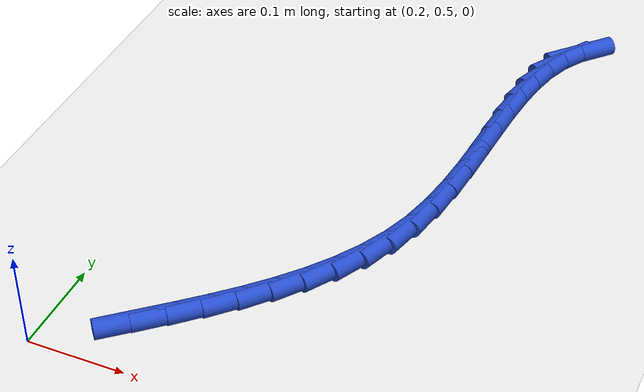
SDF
<sdf version="1.6">
 <world name="default">
  <model name="ground_plane">
   <static>1</static>
   <link name="link">
    <collision name="collision">
     <geometry><plane><normal>0 0 1</normal><size>100 100</size></plane></geometry>
     <surface><friction><ode><mu>100</mu><mu2>50</mu2></ode></friction></surface>
    </collision>
    <visual name="visual">
     <cast_shadows>0</cast_shadows>
     <geometry><plane><normal>0 0 1</normal><size>100 100</size></plane></geometry>
     <material>
      <script><uri>file://media/materials/scripts/gazebo.material</uri><name>Gazebo/WhiteGlow</name></script>
     </material>
    </visual>
   </link>
  </model>
  <model name="line">
   <link name="link_20">
    <pose>0.2823749927854412 0.5543572568521266 0.01 0 1.57 0.7065207644994871</pose>
    <collision name="collision">
     <geometry><cylinder><radius>0.01</radius><length>0.08</length></cylinder></geometry>
    </collision>
    <visual name="visual">
     <material>
      <script><name>Gazebo/Blue</name><uri>file://media/materials/scripts/gazebo.material</uri></script>
     </material>
     <geometry><cylinder><radius>0.01</radius><length>0.08</length></cylinder></geometry>
    </visual>
   </link>
   <link name="link_21">
    <pose>0.3079128461987999 0.5761537386448085 0.01 0 1.57 0.7224657098544726</pose>
    <collision name="collision">
     <geometry><cylinder><radius>0.01</radius><length>0.08</length></cylinder></geometry>
    </collision>
    <visual name="visual">
     <material>
      <script><name>Gazebo/Blue</name><uri>file://media/materials/scripts/gazebo.material</uri></script>
     </material>
     <geometry><cylinder><radius>0.01</radius><length>0.08</length></cylinder></geometry>
    </visual>
   </link>
   <link name="link_22">
    <pose>0.33290614052575945 0.5981838233949993 0.01 0 1.57 0.7512696150963581</pose>
    <collision name="collision">
     <geometry><cylinder><radius>0.01</radius><length>0.08</length></cylinder></geometry>
    </collision>
    <visual name="visual">
     <material>
      <script><name>Gazebo/Blue</name><uri>file://media/materials/scripts/gazebo.material</uri></script>
     </material>
     <geometry><cylinder><radius>0.01</radius><length>0.08</length></cylinder></geometry>
    </visual>
   </link>
   <link name="link_23">
    <pose>0.35700092325886096 0.6206876456446644 0.01 0 1.57 0.7935476910527351</pose>
    <collision name="collision">
     <geometry><cylinder><radius>0.01</radius><length>0.08</length></cylinder></geometry>
    </collision>
    <visual name="visual">
     <material>
      <script><name>Gazebo/Blue</name><uri>file://media/materials/scripts/gazebo.material</uri></script>
     </material>
     <geometry><cylinder><radius>0.01</radius><length>0.08</length></cylinder></geometry>
    </visual>
   </link>
   <link name="link_24">
    <pose>0.3798432418906455 0.6439053399357703 0.01 0 1.57 0.8499626452688942</pose>
    <collision name="collision">
     <geometry><cylinder><radius>0.01</radius><length>0.08</length></cylinder></geometry>
    </collision>
    <visual name="visual">
     <material>
      <script><name>Gazebo/Blue</name><uri>file://media/materials/scripts/gazebo.material</uri></script>
     </material>
     <geometry><cylinder><radius>0.01</radius><length>0.08</length></cylinder></geometry>
    </visual>
   </link>
   <link name="link_25">
    <pose>0.40107914391365423 0.6680770408102826 0.01 0 1.57 0.9209885288301519</pose>
    <collision name="collision">
     <geometry><cylinder><radius>0.01</radius><length>0.08</length></cylinder></geometry>
    </collision>
    <visual name="visual">
     <material>
      <script><name>Gazebo/Blue</name><uri>file://media/materials/scripts/gazebo.material</uri></script>
     </material>
     <geometry><cylinder><radius>0.01</radius><length>0.08</length></cylinder></geometry>
    </visual>
   </link>
   <link name="link_26">
    <pose>0.4203546768204281 0.6934428828101674 0.01 0 1.57 1.0065518093062245</pose>
    <collision name="collision">
     <geometry><cylinder><radius>0.01</radius><length>0.08</length></cylinder></geometry>
    </collision>
    <visual name="visual">
     <material>
      <script><name>Gazebo/Blue</name><uri>file://media/materials/scripts/gazebo.material</uri></script>
     </material>
     <geometry><cylinder><radius>0.01</radius><length>0.08</length></cylinder></geometry>
    </visual>
   </link>
   <link name="link_27">
    <pose>0.4373158881035083 0.7202430004773905 0.01 0 1.57 1.1055857865491392</pose>
    <collision name="collision">
     <geometry><cylinder><radius>0.01</radius><length>0.08</length></cylinder></geometry>
    </collision>
    <visual name="visual">
     <material>
      <script><name>Gazebo/Blue</name><uri>file://media/materials/scripts/gazebo.material</uri></script>
     </material>
     <geometry><cylinder><radius>0.01</radius><length>0.08</length></cylinder></geometry>
    </visual>
   </link>
   <link name="link_28">
    <pose>0.45160882525543605 0.7487175283539182 0.01 0 1.57 1.2156180117135698</pose>
    <collision name="collision">
     <geometry><cylinder><radius>0.01</radius><length>0.08</length></cylinder></geometry>
    </collision>
    <visual name="visual">
     <material>
      <script><name>Gazebo/Blue</name><uri>file://media/materials/scripts/gazebo.material</uri></script>
     </material>
     <geometry><cylinder><radius>0.01</radius><length>0.08</length></cylinder></geometry>
    </visual>
   </link>
   <link name="link_29">
    <pose>0.4628801880739714 0.7791060988051834 0.01 0 1.57 1.3236279337653039</pose>
    <collision name="collision">
     <geometry><cylinder><radius>0.01</radius><length>0.08</length></cylinder></geometry>
    </collision>
    <visual name="visual">
     <material>
      <script><name>Gazebo/Blue</name><uri>file://media/materials/scripts/gazebo.material</uri></script>
     </material>
     <geometry><cylinder><radius>0.01</radius><length>0.08</length></cylinder></geometry>
    </visual>
   </link>
   <link name="link_30">
    <pose>0.4710402944478253 0.8114453980678558 0.01 0 1.57 1.4059331654023732</pose>
    <collision name="collision">
     <geometry><cylinder><radius>0.01</radius><length>0.08</length></cylinder></geometry>
    </collision>
    <visual name="visual">
     <material>
      <script><name>Gazebo/Blue</name><uri>file://media/materials/scripts/gazebo.material</uri></script>
     </material>
     <geometry><cylinder><radius>0.01</radius><length>0.08</length></cylinder></geometry>
    </visual>
   </link>
   <link name="link_31">
    <pose>0.47666597273250555 0.8452589999494537 0.01 0 1.57 1.4626216940751016</pose>
    <collision name="collision">
     <geometry><cylinder><radius>0.01</radius><length>0.08</length></cylinder></geometry>
    </collision>
    <visual name="visual">
     <material>
      <script><name>Gazebo/Blue</name><uri>file://media/materials/scripts/gazebo.material</uri></script>
     </material>
     <geometry><cylinder><radius>0.01</radius><length>0.08</length></cylinder></geometry>
    </visual>
   </link>
   <link name="link_32">
    <pose>0.48043777723819026 0.8799906249330267 0.01 0 1.57 1.4968863020705354</pose>
    <collision name="collision">
     <geometry><cylinder><radius>0.01</radius><length>0.08</length></cylinder></geometry>
    </collision>
    <visual name="visual">
     <material>
      <script><name>Gazebo/Blue</name><uri>file://media/materials/scripts/gazebo.material</uri></script>
     </material>
     <geometry><cylinder><radius>0.01</radius><length>0.08</length></cylinder></geometry>
    </visual>
   </link>
   <link name="link_33">
    <pose>0.4830362622750574 0.9150839935016243 0.01 0 1.57 1.5105315589571833</pose>
    <collision name="collision">
     <geometry><cylinder><radius>0.01</radius><length>0.08</length></cylinder></geometry>
    </collision>
    <visual name="visual">
     <material>
      <script><name>Gazebo/Blue</name><uri>file://media/materials/scripts/gazebo.material</uri></script>
     </material>
     <geometry><cylinder><radius>0.01</radius><length>0.08</length></cylinder></geometry>
    </visual>
   </link>
   <link name="link_34">
    <pose>0.48514198215328497 0.9499828261382951 0.01 0 1.57 1.5037332914445531</pose>
    <collision name="collision">
     <geometry><cylinder><radius>0.01</radius><length>0.08</length></cylinder></geometry>
    </collision>
    <visual name="visual">
     <material>
      <script><name>Gazebo/Blue</name><uri>file://media/materials/scripts/gazebo.material</uri></script>
     </material>
     <geometry><cylinder><radius>0.01</radius><length>0.08</length></cylinder></geometry>
    </visual>
   </link>
   <link name="link_35">
    <pose>0.487435491183051 0.9841308433260892 0.01 0 1.57 1.4748143401871472</pose>
    <collision name="collision">
     <geometry><cylinder><radius>0.01</radius><length>0.08</length></cylinder></geometry>
    </collision>
    <visual name="visual">
     <material>
      <script><name>Gazebo/Blue</name><uri>file://media/materials/scripts/gazebo.material</uri></script>
     </material>
     <geometry><cylinder><radius>0.01</radius><length>0.08</length></cylinder></geometry>
    </visual>
   </link>
   <link name="link_36">
    <pose>0.4905973436745334 1.0169717655480552 0.01 0 1.57 1.419882717696217</pose>
    <collision name="collision">
     <geometry><cylinder><radius>0.01</radius><length>0.08</length></cylinder></geometry>
    </collision>
    <visual name="visual">
     <material>
      <script><name>Gazebo/Blue</name><uri>file://media/materials/scripts/gazebo.material</uri></script>
     </material>
     <geometry><cylinder><radius>0.01</radius><length>0.08</length></cylinder></geometry>
    </visual>
   </link>
   <link name="link_37">
    <pose>0.4953080939379103 1.0479493132872433 0.01 0 1.57 1.3323957041869539</pose>
    <collision name="collision">
     <geometry><cylinder><radius>0.01</radius><length>0.08</length></cylinder></geometry>
    </collision>
    <visual name="visual">
     <material>
      <script><name>Gazebo/Blue</name><uri>file://media/materials/scripts/gazebo.material</uri></script>
     </material>
     <geometry><cylinder><radius>0.01</radius><length>0.08</length></cylinder></geometry>
    </visual>
   </link>
   <link name="link_38">
    <pose>0.5022482962833598 1.0765072070267023 0.01 0 1.57 1.2032481967909927</pose>
    <collision name="collision">
     <geometry><cylinder><radius>0.01</radius><length>0.08</length></cylinder></geometry>
    </collision>
    <visual name="visual">
     <material>
      <script><name>Gazebo/Blue</name><uri>file://media/materials/scripts/gazebo.material</uri></script>
     </material>
     <geometry><cylinder><radius>0.01</radius><length>0.08</length></cylinder></geometry>
    </visual>
   </link>
   <link name="link_39">
    <pose>0.5120985050210598 1.1020891672494812 0.01 0 1.57 1.0242404055056542</pose>
    <collision name="collision">
     <geometry><cylinder><radius>0.01</radius><length>0.08</length></cylinder></geometry>
    </collision>
    <visual name="visual">
     <material>
      <script><name>Gazebo/Blue</name><uri>file://media/materials/scripts/gazebo.material</uri></script>
     </material>
     <geometry><cylinder><radius>0.01</radius><length>0.08</length></cylinder></geometry>
    </visual>
   </link>
   <link name="link_40">
    <pose>0.5255225985327883 1.1241546053162494 0.01 0 1.57 0.8195457834675507</pose>
    <collision name="collision">
     <geometry><cylinder><radius>0.01</radius><length>0.08</length></cylinder></geometry>
    </collision>
    <visual name="visual">
     <material>
      <script><name>Gazebo/Blue</name><uri>file://media/materials/scripts/gazebo.material</uri></script>
     </material>
     <geometry><cylinder><radius>0.01</radius><length>0.08</length></cylinder></geometry>
    </visual>
   </link>
  </model>
 </world>
</sdf>
